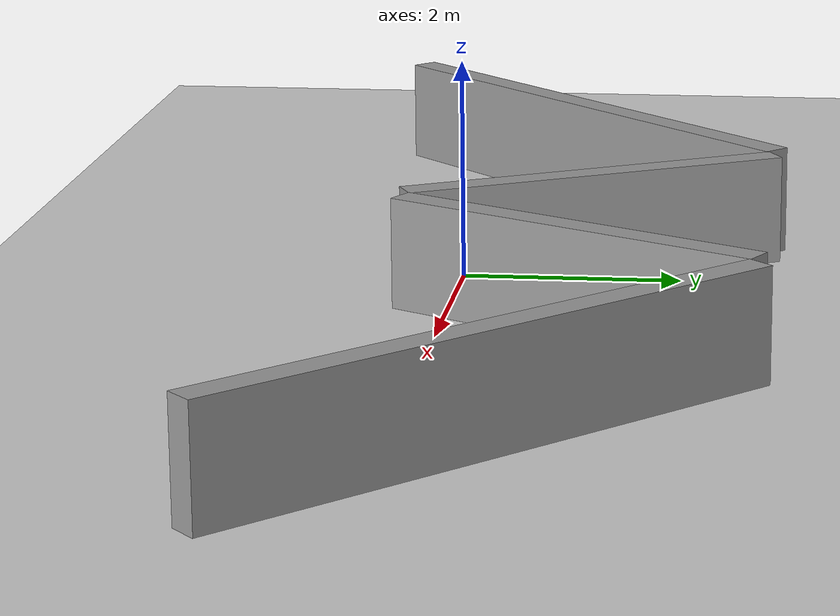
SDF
<sdf version="1.6">
 <world name="default">
  <light name="sun" type="directional">
   <pose>0 0 10 0 -0 0</pose>
   <diffuse>0.8 0.8 0.8 1</diffuse>
   <specular>0.2 0.2 0.2 1</specular>
   <attenuation>
    <range>1000</range>
    <constant>0.9</constant>
    <linear>0.01</linear>
    <quadratic>0.001</quadratic>
   </attenuation>
   <direction>-0.5 0.1 -0.9</direction>
  </light>
  <model name="ground_plane">
   <static>1</static>
   <link name="link">
    <collision name="collision">
     <geometry><plane><normal>0 0 1</normal><size>100 100</size></plane></geometry>
     <surface>
      <contact><collide_bitmask>65535</collide_bitmask></contact>
      <friction><ode><mu>100</mu><mu2>50</mu2></ode></friction>
     </surface>
    </collision>
    <visual name="visual">
     <cast_shadows>0</cast_shadows>
     <geometry><plane><normal>0 0 1</normal><size>100 100</size></plane></geometry>
     <material>
      <script><uri>file://media/materials/scripts/gazebo.material</uri><name>Gazebo/Grey</name></script>
     </material>
    </visual>
   </link>
  </model>
  <gravity>0 0 -9.8</gravity>
  <magnetic_field>6e-06 2.3e-05 -4.2e-05</magnetic_field>
  <atmosphere type="adiabatic"/>
  <physics name="default_physics" default="0" type="ode">
   <max_step_size>0.001</max_step_size>
   <real_time_factor>1</real_time_factor>
   <real_time_update_rate>1000</real_time_update_rate>
  </physics>
  <scene><ambient>0.4 0.4 0.4 1</ambient><background>0.7 0.7 0.7 1</background><shadows>1</shadows></scene>
  <audio><device>default</device></audio>
  <spherical_coordinates>
   <surface_model>EARTH_WGS84</surface_model>
   <latitude_deg>0</latitude_deg>
   <longitude_deg>0</longitude_deg>
   <elevation>0</elevation>
   <heading_deg>0</heading_deg>
  </spherical_coordinates>
  <model name="w_big">
   <link name="link_0">
    <inertial>
     <mass>1.45651</mass>
     <inertia><ixx>0.129928</ixx><ixy>0</ixy><ixz>0</ixz><iyy>3.77564</iyy><iyz>0</iyz><izz>3.66282</izz></inertia>
    </inertial>
    <pose>-5.46358 -1.51978 0.5 0 -0 0.785398</pose>
    <visual name="visual">
     <geometry><box><size>5.48698 0.265439 1</size></box></geometry>
     <material>
      <lighting>1</lighting>
      <script><uri>file://media/materials/scripts/gazebo.material</uri><name>Gazebo/Grey</name></script>
     </material>
    </visual>
    <collision name="collision">
     <geometry><box><size>5.48698 0.265439 1</size></box></geometry>
     <surface>
      <friction>
       <ode><mu>1</mu><mu2>1</mu2><fdir1>0 0 0</fdir1><slip1>0</slip1><slip2>0</slip2></ode>
       <torsional>
        <coefficient>1</coefficient>
        <patch_radius>0</patch_radius>
        <surface_radius>0</surface_radius>
        <use_patch_radius>1</use_patch_radius>
        <ode><slip>0</slip></ode>
       </torsional>
      </friction>
      <bounce><restitution_coefficient>0</restitution_coefficient><threshold>1e+06</threshold></bounce>
      <contact>
       <collide_without_contact>0</collide_without_contact>
       <collide_without_contact_bitmask>1</collide_without_contact_bitmask>
       <collide_bitmask>1</collide_bitmask>
       <ode>
        <soft_cfm>0</soft_cfm>
        <soft_erp>0.2</soft_erp>
        <kp>1e+13</kp>
        <kd>1</kd>
        <max_vel>0.01</max_vel>
        <min_depth>0</min_depth>
       </ode>
       <bullet>
        <split_impulse>1</split_impulse>
        <split_impulse_penetration_threshold>-0.01</split_impulse_penetration_threshold>
        <soft_cfm>0</soft_cfm>
        <soft_erp>0.2</soft_erp>
        <kp>1e+13</kp>
        <kd>1</kd>
       </bullet>
      </contact>
     </surface>
    </collision>
   </link>
   <link name="link_0_clone_0">
    <inertial>
     <mass>0.968645</mass>
     <inertia>
      <ixx>0.0864078</ixx>
      <ixy>0</ixy>
      <ixz>0</ixz>
      <iyy>1.15558</iyy>
      <iyz>0</iyz>
      <izz>1.08055</izz>
     </inertia>
    </inertial>
    <pose>-0.507298 -1.25117 0.5 0 -0 1.06591</pose>
    <visual name="visual">
     <geometry><box><size>3.64908 0.265439 1</size></box></geometry>
     <material>
      <lighting>1</lighting>
      <script><uri>file://media/materials/scripts/gazebo.material</uri><name>Gazebo/Grey</name></script>
      <shader type="pixel"/>
     </material>
    </visual>
    <collision name="collision">
     <geometry><box><size>3.64908 0.265439 1</size></box></geometry>
     <surface>
      <friction>
       <ode><mu>1</mu><mu2>1</mu2><fdir1>0 0 0</fdir1><slip1>0</slip1><slip2>0</slip2></ode>
       <torsional>
        <coefficient>1</coefficient>
        <patch_radius>0</patch_radius>
        <surface_radius>0</surface_radius>
        <use_patch_radius>1</use_patch_radius>
        <ode><slip>0</slip></ode>
       </torsional>
      </friction>
      <bounce><restitution_coefficient>0</restitution_coefficient><threshold>1e+06</threshold></bounce>
      <contact>
       <collide_without_contact>0</collide_without_contact>
       <collide_without_contact_bitmask>1</collide_without_contact_bitmask>
       <collide_bitmask>1</collide_bitmask>
       <ode>
        <soft_cfm>0</soft_cfm>
        <soft_erp>0.2</soft_erp>
        <kp>1e+13</kp>
        <kd>1</kd>
        <max_vel>0.01</max_vel>
        <min_depth>0</min_depth>
       </ode>
       <bullet>
        <split_impulse>1</split_impulse>
        <split_impulse_penetration_threshold>-0.01</split_impulse_penetration_threshold>
        <soft_cfm>0</soft_cfm>
        <soft_erp>0.2</soft_erp>
        <kp>1e+13</kp>
        <kd>1</kd>
       </bullet>
      </contact>
     </surface>
    </collision>
   </link>
   <link name="link_0_clone_0_clone">
    <inertial>
     <mass>0.975312</mass>
     <inertia>
      <ixx>0.0870025</ixx>
      <ixy>0</ixy>
      <ixz>0</ixz>
      <iyy>1.17849</iyy>
      <iyz>0</iyz>
      <izz>1.10294</izz>
     </inertia>
    </inertial>
    <pose>-2.45721 -1.21441 0.5 0 -0 2.05636</pose>
    <visual name="visual">
     <geometry><box><size>3.67421 0.265439 1</size></box></geometry>
     <material>
      <lighting>1</lighting>
      <script><uri>file://media/materials/scripts/gazebo.material</uri><name>Gazebo/Grey</name></script>
      <shader type="pixel"/>
     </material>
    </visual>
    <collision name="collision">
     <geometry><box><size>3.67421 0.265439 1</size></box></geometry>
     <surface>
      <friction>
       <ode><mu>1</mu><mu2>1</mu2><fdir1>0 0 0</fdir1><slip1>0</slip1><slip2>0</slip2></ode>
       <torsional>
        <coefficient>1</coefficient>
        <patch_radius>0</patch_radius>
        <surface_radius>0</surface_radius>
        <use_patch_radius>1</use_patch_radius>
        <ode><slip>0</slip></ode>
       </torsional>
      </friction>
      <bounce><restitution_coefficient>0</restitution_coefficient><threshold>1e+06</threshold></bounce>
      <contact>
       <collide_without_contact>0</collide_without_contact>
       <collide_without_contact_bitmask>1</collide_without_contact_bitmask>
       <collide_bitmask>1</collide_bitmask>
       <ode>
        <soft_cfm>0</soft_cfm>
        <soft_erp>0.2</soft_erp>
        <kp>1e+13</kp>
        <kd>1</kd>
        <max_vel>0.01</max_vel>
        <min_depth>0</min_depth>
       </ode>
       <bullet>
        <split_impulse>1</split_impulse>
        <split_impulse_penetration_threshold>-0.01</split_impulse_penetration_threshold>
        <soft_cfm>0</soft_cfm>
        <soft_erp>0.2</soft_erp>
        <kp>1e+13</kp>
        <kd>1</kd>
       </bullet>
      </contact>
     </surface>
    </collision>
   </link>
   <link name="link_0_clone_clone">
    <inertial>
     <mass>1.45651</mass>
     <inertia><ixx>0.129928</ixx><ixy>0</ixy><ixz>0</ixz><iyy>3.77564</iyy><iyz>0</iyz><izz>3.66282</izz></inertia>
    </inertial>
    <pose>2.51912 -1.57505 0.5 0 0 -0.785398</pose>
    <visual name="visual">
     <geometry><box><size>5.48698 0.265439 1</size></box></geometry>
     <material>
      <lighting>1</lighting>
      <script><uri>file://media/materials/scripts/gazebo.material</uri><name>Gazebo/Grey</name></script>
      <shader type="pixel"/>
     </material>
    </visual>
    <collision name="collision">
     <geometry><box><size>5.48698 0.265439 1</size></box></geometry>
     <surface>
      <friction>
       <ode><mu>1</mu><mu2>1</mu2><fdir1>0 0 0</fdir1><slip1>0</slip1><slip2>0</slip2></ode>
       <torsional>
        <coefficient>1</coefficient>
        <patch_radius>0</patch_radius>
        <surface_radius>0</surface_radius>
        <use_patch_radius>1</use_patch_radius>
        <ode><slip>0</slip></ode>
       </torsional>
      </friction>
      <bounce><restitution_coefficient>0</restitution_coefficient><threshold>1e+06</threshold></bounce>
      <contact>
       <collide_without_contact>0</collide_without_contact>
       <collide_without_contact_bitmask>1</collide_without_contact_bitmask>
       <collide_bitmask>1</collide_bitmask>
       <ode>
        <soft_cfm>0</soft_cfm>
        <soft_erp>0.2</soft_erp>
        <kp>1e+13</kp>
        <kd>1</kd>
        <max_vel>0.01</max_vel>
        <min_depth>0</min_depth>
       </ode>
       <bullet>
        <split_impulse>1</split_impulse>
        <split_impulse_penetration_threshold>-0.01</split_impulse_penetration_threshold>
        <soft_cfm>0</soft_cfm>
        <soft_erp>0.2</soft_erp>
        <kp>1e+13</kp>
        <kd>1</kd>
       </bullet>
      </contact>
     </surface>
    </collision>
   </link>
   <static>1</static>
   <pose>2.41552 2.41826 0 0 -0 0</pose>
  </model>
 </world>
</sdf>
